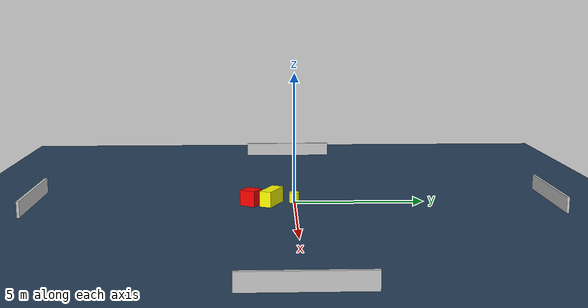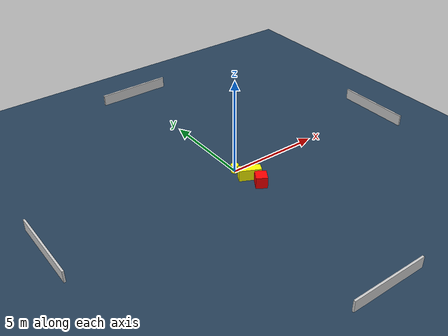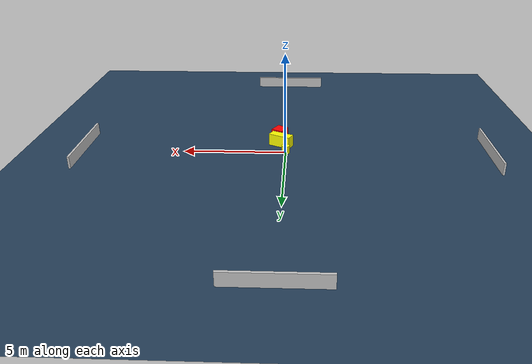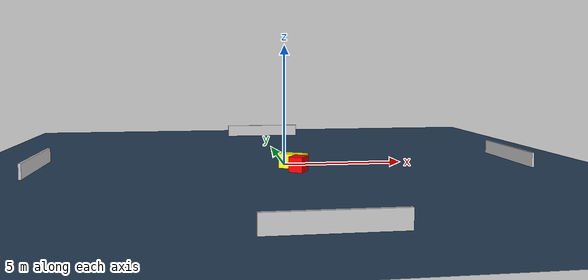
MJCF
<?xml version="1.0" ?>
<mujoco model="generated_environment">
  <option timestep="0.01" integrator="RK4" cone="elliptic"/>
  <default>
    <geom density="1"/>
  </default>
  <asset>
    <texture builtin="gradient" height="3072" name="skybox" rgb1="0.3 0.5 0.7" rgb2="0 0 0" type="skybox" width="512"/>
    <texture builtin="checker" height="300" name="groundplane" rgb1="0.2 0.3 0.4" rgb2="0.1 0.2 0.3" type="2d" width="300"/>
    <material name="groundplane" reflectance="0.2" texrepeat="5 5" texture="groundplane"/>
  </asset>
  <worldbody>
    <light dir="0 0 -1" directional="true" pos="0 0 1.5"/>
    <geom condim="3" friction="0.5 0.005 0.001" material="groundplane" name="floor" pos="0 0 0" size="0 0 0.05" type="plane"/>
    <body name="walls">
      <geom name="wall_1" condim="4" pos="-10.0 0.0 0.3" rgba="0.800000011920929 0.800000011920929 0.800000011920929 1.0" size="0.05 2.0 0.3" type="box"/>
      <geom name="wall_2" condim="4" pos="10.0 0.0 0.3" rgba="0.800000011920929 0.800000011920929 0.800000011920929 1.0" size="0.05 2.0 0.3" type="box"/>
      <geom name="wall_3" condim="4" pos="0.0 -10.0 0.3" rgba="0.800000011920929 0.800000011920929 0.800000011920929 1.0" size="2.0 0.05 0.3" type="box"/>
      <geom name="wall_4" condim="4" pos="0.0 10.0 0.3" rgba="0.800000011920929 0.800000011920929 0.800000011920929 1.0" size="2.0 0.05 0.3" type="box"/>
    </body>
    <body name="robot">
      <joint name="joint_x" type="slide" pos="0 0 0" axis="1 0 0"/>
      <joint name="joint_y" type="slide" pos="0 0 0" axis="0 1 0"/>
      <geom name="robot" type="cylinder" pos="0.0 0.0 0.2" size="0.2 0.2 0.0" mass="5.0" friction="1.0 0.005 0.0001" condim="4" rgba="1.0 1.0 0.0 1.0"/>
    </body>
    <body name="obstacle_1_movable">
      <geom name="obstacle_1_movable" condim="4" pos="0.2524831040122076 -0.8741343957983846 0.3" euler="0 0 63.98337146375769" friction="0.0 0.005 0.001" rgba="1.0 1.0 0.0 1.0" size="0.2238459045951303 0.5635314977796502 0.3" type="box" mass="0.1"/>
      <joint type="free"/>
    </body>
    <body name="obstacle_2_static">
      <geom name="obstacle_2_static" condim="4" pos="0.34072791962704535 -1.648988236245488 0.3" euler="0 0 328.1462970988199" friction="0.0 0.005 0.001" rgba="1.0 0.0 0.0 1.0" size="0.29174233036500374 0.31645636316195624 0.3" type="box"/>
    </body>
  </worldbody>
  <actuator>
    <motor name="actuator_x" joint="joint_x" gear="1" ctrlrange="-1 1"/>
    <motor name="actuator_y" joint="joint_y" gear="1" ctrlrange="-1 1"/>
  </actuator>
</mujoco>
